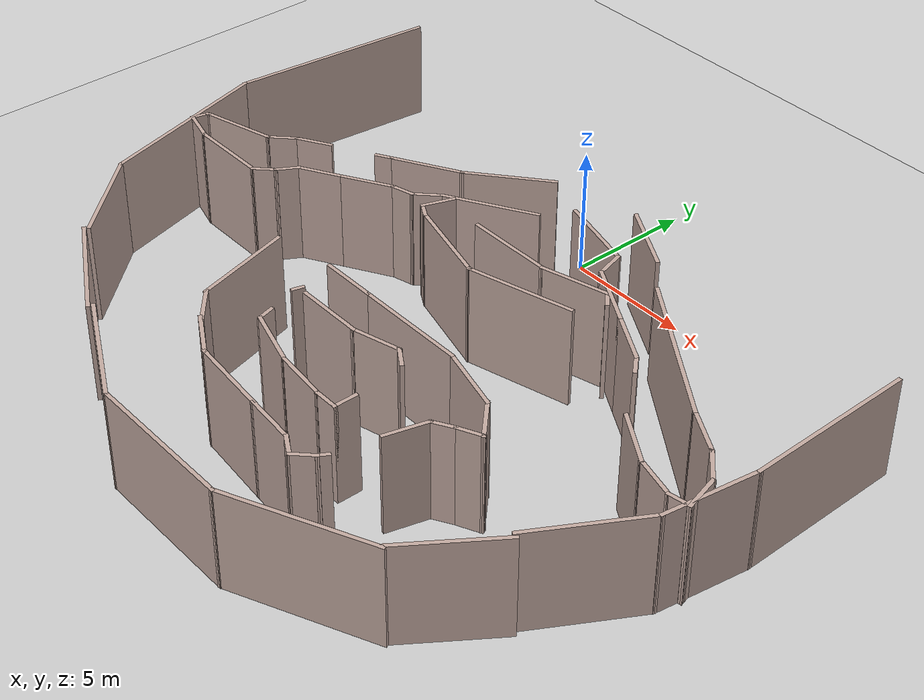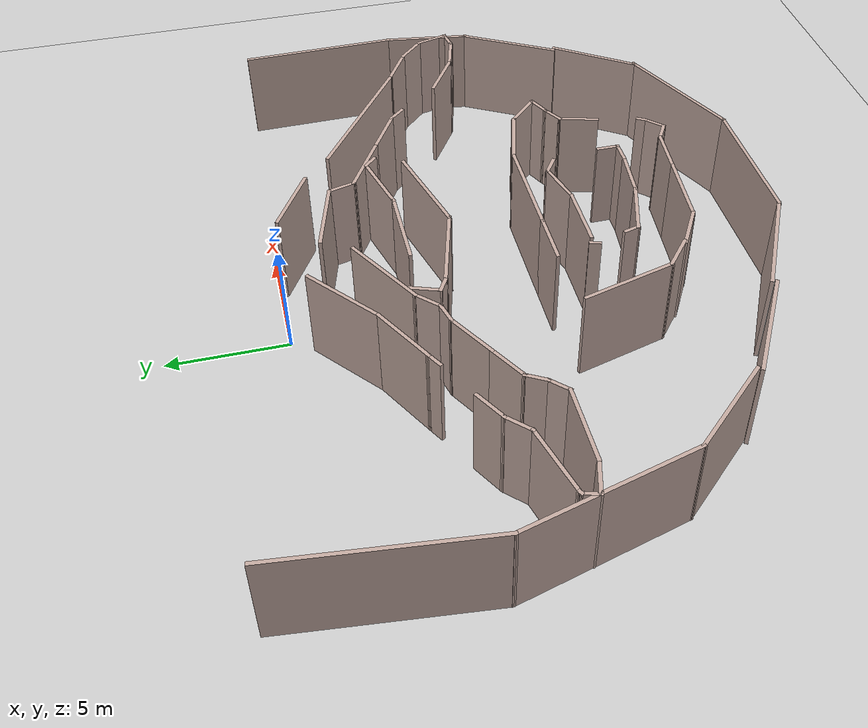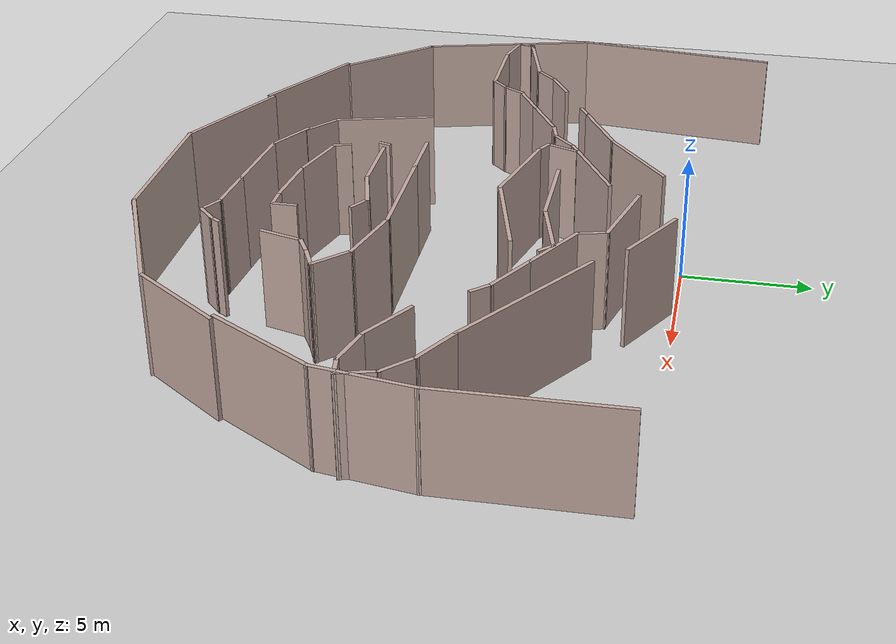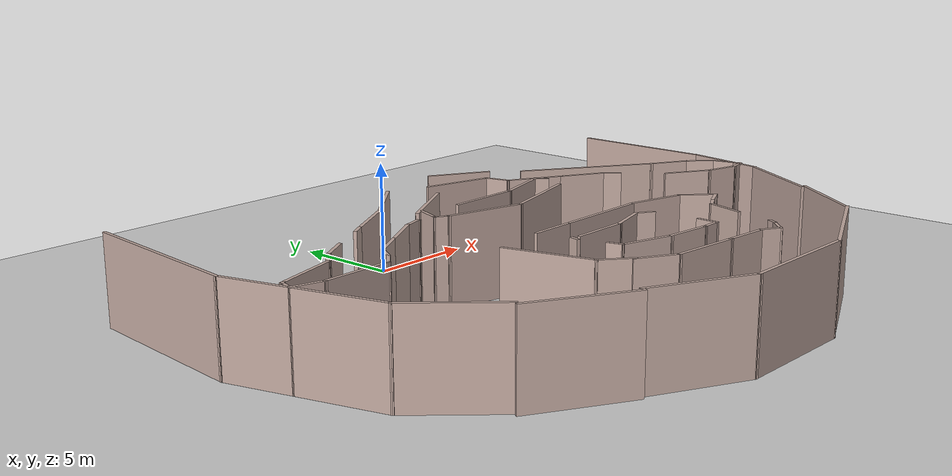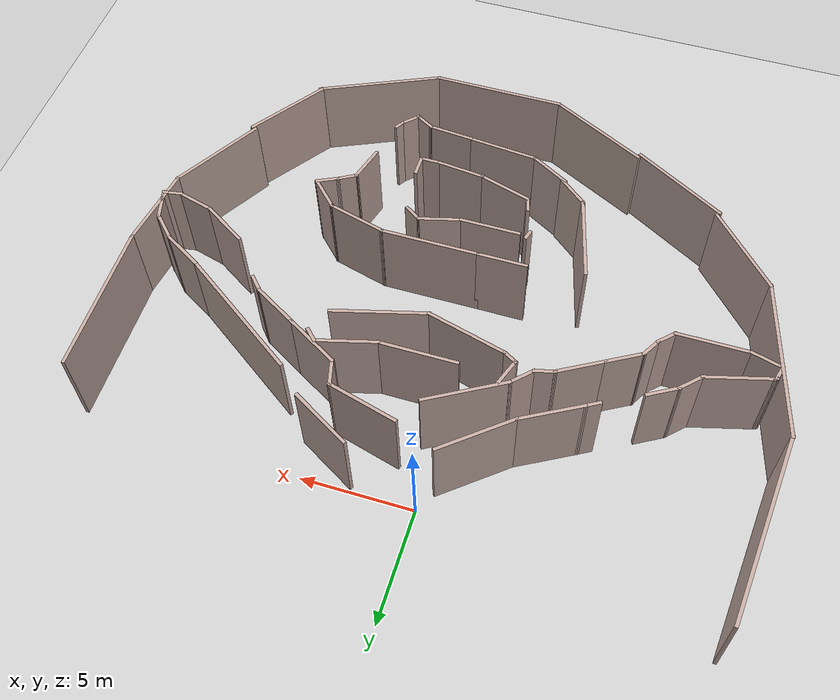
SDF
<sdf version="1.7">
 <world name="default">
  <model name="ground_plane">
   <static>1</static>
   <link name="link">
    <collision name="collision">
     <geometry><plane><normal>0 0 1</normal><size>100 100</size></plane></geometry>
     <surface><friction><ode><mu>100</mu><mu2>50</mu2></ode></friction></surface>
    </collision>
    <visual name="visual">
     <cast_shadows>0</cast_shadows>
     <geometry><plane><normal>0 0 1</normal><size>100 100</size></plane></geometry>
     <material>
      <script><uri>file://media/materials/scripts/gazebo.material</uri><name>Gazebo/Grey</name></script>
     </material>
    </visual>
   </link>
  </model>
  <model name="Untitled">
   <pose>-0.071284 -0.040454 0 0 -0 0</pose>
   <link name="Wall_100">
    <collision name="Wall_100_Collision">
     <geometry><box><size>8.26296 0.15 4.0</size></box></geometry>
     <pose>0 0 2.0 0 -0 0</pose>
    </collision>
    <visual name="Wall_100_Visual">
     <pose>0 0 2.0 0 -0 0</pose>
     <geometry><box><size>8.26296 0.15 4.0</size></box></geometry>
     <material>
      <script><uri>file://media/materials/scripts/gazebo.material</uri><name>Gazebo/Grey</name></script>
      <ambient>0.760784 0.662745 0.627451 1</ambient>
     </material>
     <meta><layer>0</layer></meta>
    </visual>
    <pose>-13.0327 -1.43511 0 0 -0 -1.67725</pose>
   </link>
   <link name="Wall_102">
    <collision name="Wall_102_Collision">
     <geometry><box><size>3.76572 0.15 4.0</size></box></geometry>
     <pose>0 0 2.0 0 -0 0</pose>
    </collision>
    <visual name="Wall_102_Visual">
     <pose>0 0 2.0 0 -0 0</pose>
     <geometry><box><size>3.76572 0.15 4.0</size></box></geometry>
     <material>
      <script><uri>file://media/materials/scripts/gazebo.material</uri><name>Gazebo/Grey</name></script>
      <ambient>0.760784 0.662745 0.627451 1</ambient>
     </material>
     <meta><layer>0</layer></meta>
    </visual>
    <pose>14.7329 -8.7065 0 0 -0 1.42378</pose>
   </link>
   <link name="Wall_103">
    <collision name="Wall_103_Collision">
     <geometry><box><size>6.73423 0.15 4.0</size></box></geometry>
     <pose>0 0 2.0 0 -0 0</pose>
    </collision>
    <visual name="Wall_103_Visual">
     <pose>0 0 2.0 0 -0 0</pose>
     <geometry><box><size>6.73423 0.15 4.0</size></box></geometry>
     <material>
      <script><uri>file://media/materials/scripts/gazebo.material</uri><name>Gazebo/Grey</name></script>
      <ambient>0.760784 0.662745 0.627451 1</ambient>
     </material>
     <meta><layer>0</layer></meta>
    </visual>
    <pose>14.933 -3.62666 0 0 -0 1.59045</pose>
   </link>
   <link name="Wall_167">
    <collision name="Wall_167_Collision">
     <geometry><box><size>3.59762 0.15 4.0</size></box></geometry>
     <pose>0 0 2.0 0 -0 0</pose>
    </collision>
    <visual name="Wall_167_Visual">
     <pose>0 0 2.0 0 -0 0</pose>
     <geometry><box><size>3.59762 0.15 4.0</size></box></geometry>
     <material>
      <script><uri>file://media/materials/scripts/gazebo.material</uri><name>Gazebo/Grey</name></script>
      <ambient>0.760784 0.662745 0.627451 1</ambient>
     </material>
     <meta><layer>0</layer></meta>
    </visual>
    <pose>-1.80589 -2.00922 0 0 -0 -2.45139</pose>
   </link>
   <link name="Wall_168">
    <collision name="Wall_168_Collision">
     <geometry><box><size>2.9108 0.15 4.0</size></box></geometry>
     <pose>0 0 2.0 0 -0 0</pose>
    </collision>
    <visual name="Wall_168_Visual">
     <pose>0 0 2.0 0 -0 0</pose>
     <geometry><box><size>2.9108 0.15 4.0</size></box></geometry>
     <material>
      <script><uri>file://media/materials/scripts/gazebo.material</uri><name>Gazebo/Grey</name></script>
      <ambient>0.760784 0.662745 0.627451 1</ambient>
     </material>
     <meta><layer>0</layer></meta>
    </visual>
    <pose>-4.33918 -3.78189 0 0 -0 -2.63056</pose>
   </link>
   <link name="Wall_170">
    <collision name="Wall_170_Collision">
     <geometry><box><size>0.75 0.15 4.0</size></box></geometry>
     <pose>0 0 2.0 0 -0 0</pose>
    </collision>
    <visual name="Wall_170_Visual">
     <pose>0 0 2.0 0 -0 0</pose>
     <geometry><box><size>0.75 0.15 4.0</size></box></geometry>
     <material>
      <script><uri>file://media/materials/scripts/gazebo.material</uri><name>Gazebo/Grey</name></script>
      <ambient>0.760784 0.662745 0.627451 1</ambient>
     </material>
     <meta><layer>0</layer></meta>
    </visual>
    <pose>-5.80303 -4.60702 0 0 -0 -2.61799</pose>
   </link>
   <link name="Wall_173">
    <collision name="Wall_173_Collision">
     <geometry><box><size>1.5 0.15 4.0</size></box></geometry>
     <pose>0 0 2.0 0 -0 0</pose>
    </collision>
    <visual name="Wall_173_Visual">
     <pose>0 0 2.0 0 -0 0</pose>
     <geometry><box><size>1.5 0.15 4.0</size></box></geometry>
     <material>
      <script><uri>file://media/materials/scripts/gazebo.material</uri><name>Gazebo/Grey</name></script>
      <ambient>0.760784 0.662745 0.627451 1</ambient>
     </material>
     <meta><layer>0</layer></meta>
    </visual>
    <pose>-8.31096 -5.98026 0 0 -0 -2.61799</pose>
   </link>
   <link name="Wall_174">
    <collision name="Wall_174_Collision">
     <geometry><box><size>1.25 0.15 4.0</size></box></geometry>
     <pose>0 0 2.0 0 -0 0</pose>
    </collision>
    <visual name="Wall_174_Visual">
     <pose>0 0 2.0 0 -0 0</pose>
     <geometry><box><size>1.25 0.15 4.0</size></box></geometry>
     <material>
      <script><uri>file://media/materials/scripts/gazebo.material</uri><name>Gazebo/Grey</name></script>
      <ambient>0.760784 0.662745 0.627451 1</ambient>
     </material>
     <meta><layer>0</layer></meta>
    </visual>
    <pose>-9.28444 -6.70667 0 0 -0 -2.35619</pose>
   </link>
   <link name="Wall_175">
    <collision name="Wall_175_Collision">
     <geometry><box><size>3 0.15 4.0</size></box></geometry>
     <pose>0 0 2.0 0 -0 0</pose>
    </collision>
    <visual name="Wall_175_Visual">
     <pose>0 0 2.0 0 -0 0</pose>
     <geometry><box><size>3 0.15 4.0</size></box></geometry>
     <material>
      <script><uri>file://media/materials/scripts/gazebo.material</uri><name>Gazebo/Grey</name></script>
      <ambient>0.760784 0.662745 0.627451 1</ambient>
     </material>
     <meta><layer>0</layer></meta>
    </visual>
    <pose>-11.0498 -7.46439 0 0 -0 -2.87979</pose>
   </link>
   <link name="Wall_176">
    <collision name="Wall_176_Collision">
     <geometry><box><size>0.25 0.15 4.0</size></box></geometry>
     <pose>0 0 2.0 0 -0 0</pose>
    </collision>
    <visual name="Wall_176_Visual">
     <pose>0 0 2.0 0 -0 0</pose>
     <geometry><box><size>0.25 0.15 4.0</size></box></geometry>
     <material>
      <script><uri>file://media/materials/scripts/gazebo.material</uri><name>Gazebo/Grey</name></script>
      <ambient>0.760784 0.662745 0.627451 1</ambient>
     </material>
     <meta><layer>0</layer></meta>
    </visual>
    <pose>-12.4695 -7.85821 0 0 -0 -2.61799</pose>
   </link>
   <link name="Wall_177">
    <collision name="Wall_177_Collision">
     <geometry><box><size>0.75 0.15 4.0</size></box></geometry>
     <pose>0 0 2.0 0 -0 0</pose>
    </collision>
    <visual name="Wall_177_Visual">
     <pose>0 0 2.0 0 -0 0</pose>
     <geometry><box><size>0.75 0.15 4.0</size></box></geometry>
     <material>
      <script><uri>file://media/materials/scripts/gazebo.material</uri><name>Gazebo/Grey</name></script>
      <ambient>0.760784 0.662745 0.627451 1</ambient>
     </material>
     <meta><layer>0</layer></meta>
    </visual>
    <pose>-12.5905 -8.17299 0 0 -0 -1.8326</pose>
   </link>
   <link name="Wall_178">
    <collision name="Wall_178_Collision">
     <geometry><box><size>1.5 0.15 4.0</size></box></geometry>
     <pose>0 0 2.0 0 -0 0</pose>
    </collision>
    <visual name="Wall_178_Visual">
     <pose>0 0 2.0 0 -0 0</pose>
     <geometry><box><size>1.5 0.15 4.0</size></box></geometry>
     <material>
      <script><uri>file://media/materials/scripts/gazebo.material</uri><name>Gazebo/Grey</name></script>
      <ambient>0.760784 0.662745 0.627451 1</ambient>
     </material>
     <meta><layer>0</layer></meta>
    </visual>
    <pose>-12.0161 -8.63747 0 0 -0 -0.261799</pose>
   </link>
   <link name="Wall_179">
    <collision name="Wall_179_Collision">
     <geometry><box><size>3.25 0.15 4.0</size></box></geometry>
     <pose>0 0 2.0 0 -0 0</pose>
    </collision>
    <visual name="Wall_179_Visual">
     <pose>0 0 2.0 0 -0 0</pose>
     <geometry><box><size>3.25 0.15 4.0</size></box></geometry>
     <material>
      <script><uri>file://media/materials/scripts/gazebo.material</uri><name>Gazebo/Grey</name></script>
      <ambient>0.760784 0.662745 0.627451 1</ambient>
     </material>
     <meta><layer>0</layer></meta>
    </visual>
    <pose>-9.81413 -8.81217 0 0 -0 0</pose>
   </link>
   <link name="Wall_180">
    <collision name="Wall_180_Collision">
     <geometry><box><size>1 0.15 4.0</size></box></geometry>
     <pose>0 0 2.0 0 -0 0</pose>
    </collision>
    <visual name="Wall_180_Visual">
     <pose>0 0 2.0 0 -0 0</pose>
     <geometry><box><size>1 0.15 4.0</size></box></geometry>
     <material>
      <script><uri>file://media/materials/scripts/gazebo.material</uri><name>Gazebo/Grey</name></script>
      <ambient>0.760784 0.662745 0.627451 1</ambient>
     </material>
     <meta><layer>0</layer></meta>
    </visual>
    <pose>-7.96361 -8.51165 0 0 -0 0.785398</pose>
   </link>
   <link name="Wall_181">
    <collision name="Wall_181_Collision">
     <geometry><box><size>1 0.15 4.0</size></box></geometry>
     <pose>0 0 2.0 0 -0 0</pose>
    </collision>
    <visual name="Wall_181_Visual">
     <pose>0 0 2.0 0 -0 0</pose>
     <geometry><box><size>1 0.15 4.0</size></box></geometry>
     <material>
      <script><uri>file://media/materials/scripts/gazebo.material</uri><name>Gazebo/Grey</name></script>
      <ambient>0.760784 0.662745 0.627451 1</ambient>
     </material>
     <meta><layer>0</layer></meta>
    </visual>
    <pose>-7.45059 -7.84307 0 0 -0 1.0472</pose>
   </link>
   <link name="Wall_182">
    <collision name="Wall_182_Collision">
     <geometry><box><size>1.75 0.15 4.0</size></box></geometry>
     <pose>0 0 2.0 0 -0 0</pose>
    </collision>
    <visual name="Wall_182_Visual">
     <pose>0 0 2.0 0 -0 0</pose>
     <geometry><box><size>1.75 0.15 4.0</size></box></geometry>
     <material>
      <script><uri>file://media/materials/scripts/gazebo.material</uri><name>Gazebo/Grey</name></script>
      <ambient>0.760784 0.662745 0.627451 1</ambient>
     </material>
     <meta><layer>0</layer></meta>
    </visual>
    <pose>-6.54527 -7.07501 0 0 -0 0.523599</pose>
   </link>
   <link name="Wall_183">
    <collision name="Wall_183_Collision">
     <geometry><box><size>2.25 0.15 4.0</size></box></geometry>
     <pose>0 0 2.0 0 -0 0</pose>
    </collision>
    <visual name="Wall_183_Visual">
     <pose>0 0 2.0 0 -0 0</pose>
     <geometry><box><size>2.25 0.15 4.0</size></box></geometry>
     <material>
      <script><uri>file://media/materials/scripts/gazebo.material</uri><name>Gazebo/Grey</name></script>
      <ambient>0.760784 0.662745 0.627451 1</ambient>
     </material>
     <meta><layer>0</layer></meta>
    </visual>
    <pose>-4.94312 -6.15001 0 0 -0 0.523599</pose>
   </link>
   <link name="Wall_184">
    <collision name="Wall_184_Collision">
     <geometry><box><size>1 0.15 4.0</size></box></geometry>
     <pose>0 0 2.0 0 -0 0</pose>
    </collision>
    <visual name="Wall_184_Visual">
     <pose>0 0 2.0 0 -0 0</pose>
     <geometry><box><size>1 0.15 4.0</size></box></geometry>
     <material>
      <script><uri>file://media/materials/scripts/gazebo.material</uri><name>Gazebo/Grey</name></script>
      <ambient>0.760784 0.662745 0.627451 1</ambient>
     </material>
     <meta><layer>0</layer></meta>
    </visual>
    <pose>-3.62328 -5.51501 0 0 -0 0.261799</pose>
   </link>
   <link name="Wall_185">
    <collision name="Wall_185_Collision">
     <geometry><box><size>1.25 0.15 4.0</size></box></geometry>
     <pose>0 0 2.0 0 -0 0</pose>
    </collision>
    <visual name="Wall_185_Visual">
     <pose>0 0 2.0 0 -0 0</pose>
     <geometry><box><size>1.25 0.15 4.0</size></box></geometry>
     <material>
      <script><uri>file://media/materials/scripts/gazebo.material</uri><name>Gazebo/Grey</name></script>
      <ambient>0.760784 0.662745 0.627451 1</ambient>
     </material>
     <meta><layer>0</layer></meta>
    </visual>
    <pose>-2.82385 -5.0161 0 0 -0 0.785398</pose>
   </link>
   <link name="Wall_186">
    <collision name="Wall_186_Collision">
     <geometry><box><size>3.75 0.15 4.0</size></box></geometry>
     <pose>0 0 2.0 0 -0 0</pose>
    </collision>
    <visual name="Wall_186_Visual">
     <pose>0 0 2.0 0 -0 0</pose>
     <geometry><box><size>3.75 0.15 4.0</size></box></geometry>
     <material>
      <script><uri>file://media/materials/scripts/gazebo.material</uri><name>Gazebo/Grey</name></script>
      <ambient>0.760784 0.662745 0.627451 1</ambient>
     </material>
     <meta><layer>0</layer></meta>
    </visual>
    <pose>-0.876094 -3.7272 0 0 -0 0.523599</pose>
   </link>
   <link name="Wall_188">
    <collision name="Wall_188_Collision">
     <geometry><box><size>3.25 0.15 4.0</size></box></geometry>
     <pose>0 0 2.0 0 -0 0</pose>
    </collision>
    <visual name="Wall_188_Visual">
     <pose>0 0 2.0 0 -0 0</pose>
     <geometry><box><size>3.25 0.15 4.0</size></box></geometry>
     <material>
      <script><uri>file://media/materials/scripts/gazebo.material</uri><name>Gazebo/Grey</name></script>
      <ambient>0.760784 0.662745 0.627451 1</ambient>
     </material>
     <meta><layer>0</layer></meta>
    </visual>
    <pose>2.85494 -2.05923 0 0 -0 -0.261799</pose>
   </link>
   <link name="Wall_189">
    <collision name="Wall_189_Collision">
     <geometry><box><size>1.25 0.15 4.0</size></box></geometry>
     <pose>0 0 2.0 0 -0 0</pose>
    </collision>
    <visual name="Wall_189_Visual">
     <pose>0 0 2.0 0 -0 0</pose>
     <geometry><box><size>1.25 0.15 4.0</size></box></geometry>
     <material>
      <script><uri>file://media/materials/scripts/gazebo.material</uri><name>Gazebo/Grey</name></script>
      <ambient>0.760784 0.662745 0.627451 1</ambient>
     </material>
     <meta><layer>0</layer></meta>
    </visual>
    <pose>4.49447 -2.99166 0 0 -0 -1.309</pose>
   </link>
   <link name="Wall_190">
    <collision name="Wall_190_Collision">
     <geometry><box><size>2.75 0.15 4.0</size></box></geometry>
     <pose>0 0 2.0 0 -0 0</pose>
    </collision>
    <visual name="Wall_190_Visual">
     <pose>0 0 2.0 0 -0 0</pose>
     <geometry><box><size>2.75 0.15 4.0</size></box></geometry>
     <material>
      <script><uri>file://media/materials/scripts/gazebo.material</uri><name>Gazebo/Grey</name></script>
      <ambient>0.760784 0.662745 0.627451 1</ambient>
     </material>
     <meta><layer>0</layer></meta>
    </visual>
    <pose>5.76265 -4.17292 0 0 -0 -0.523599</pose>
   </link>
   <link name="Wall_191">
    <collision name="Wall_191_Collision">
     <geometry><box><size>2.25 0.15 4.0</size></box></geometry>
     <pose>0 0 2.0 0 -0 0</pose>
    </collision>
    <visual name="Wall_191_Visual">
     <pose>0 0 2.0 0 -0 0</pose>
     <geometry><box><size>2.25 0.15 4.0</size></box></geometry>
     <material>
      <script><uri>file://media/materials/scripts/gazebo.material</uri><name>Gazebo/Grey</name></script>
      <ambient>0.760784 0.662745 0.627451 1</ambient>
     </material>
     <meta><layer>0</layer></meta>
    </visual>
    <pose>7.79781 -5.34792 0 0 -0 -0.523599</pose>
   </link>
   <link name="Wall_192">
    <collision name="Wall_192_Collision">
     <geometry><box><size>0.914214 0.15 4.0</size></box></geometry>
     <pose>0 0 2.0 0 -0 0</pose>
    </collision>
    <visual name="Wall_192_Visual">
     <pose>0 0 2.0 0 -0 0</pose>
     <geometry><box><size>0.914214 0.15 4.0</size></box></geometry>
     <material>
      <script><uri>file://media/materials/scripts/gazebo.material</uri><name>Gazebo/Grey</name></script>
      <ambient>0.760784 0.662745 0.627451 1</ambient>
     </material>
     <meta><layer>0</layer></meta>
    </visual>
    <pose>8.96539 -6.15454 0 0 -0 -0.828657</pose>
   </link>
   <link name="Wall_194">
    <collision name="Wall_194_Collision">
     <geometry><box><size>2.32419 0.15 4.0</size></box></geometry>
     <pose>0 0 2.0 0 -0 0</pose>
    </collision>
    <visual name="Wall_194_Visual">
     <pose>0 0 2.0 0 -0 0</pose>
     <geometry><box><size>2.32419 0.15 4.0</size></box></geometry>
     <material>
      <script><uri>file://media/materials/scripts/gazebo.material</uri><name>Gazebo/Grey</name></script>
      <ambient>0.760784 0.662745 0.627451 1</ambient>
     </material>
     <meta><layer>0</layer></meta>
    </visual>
    <pose>11.4883 -8.71762 0 0 -0 -0.558669</pose>
   </link>
   <link name="Wall_195">
    <collision name="Wall_195_Collision">
     <geometry><box><size>1.75 0.15 4.0</size></box></geometry>
     <pose>0 0 2.0 0 -0 0</pose>
    </collision>
    <visual name="Wall_195_Visual">
     <pose>0 0 2.0 0 -0 0</pose>
     <geometry><box><size>1.75 0.15 4.0</size></box></geometry>
     <material>
      <script><uri>file://media/materials/scripts/gazebo.material</uri><name>Gazebo/Grey</name></script>
      <ambient>0.760784 0.662745 0.627451 1</ambient>
     </material>
     <meta><layer>0</layer></meta>
    </visual>
    <pose>13.1828 -9.50089 0 0 -0 -0.261799</pose>
   </link>
   <link name="Wall_196">
    <collision name="Wall_196_Collision">
     <geometry><box><size>0.938094 0.15 4.0</size></box></geometry>
     <pose>0 0 2.0 0 -0 0</pose>
    </collision>
    <visual name="Wall_196_Visual">
     <pose>0 0 2.0 0 -0 0</pose>
     <geometry><box><size>0.938094 0.15 4.0</size></box></geometry>
     <material>
      <script><uri>file://media/materials/scripts/gazebo.material</uri><name>Gazebo/Grey</name></script>
      <ambient>0.760784 0.662745 0.627451 1</ambient>
     </material>
     <meta><layer>0</layer></meta>
    </visual>
    <pose>14.3445 -9.64452 0 0 -0 0.161665</pose>
   </link>
   <link name="Wall_197">
    <collision name="Wall_197_Collision">
     <geometry><box><size>1.5 0.15 4.0</size></box></geometry>
     <pose>0 0 2.0 0 -0 0</pose>
    </collision>
    <visual name="Wall_197_Visual">
     <pose>0 0 2.0 0 -0 0</pose>
     <geometry><box><size>1.5 0.15 4.0</size></box></geometry>
     <material>
      <script><uri>file://media/materials/scripts/gazebo.material</uri><name>Gazebo/Grey</name></script>
      <ambient>0.760784 0.662745 0.627451 1</ambient>
     </material>
     <meta><layer>0</layer></meta>
    </visual>
    <pose>14.5587 -8.9291 0 0 -0 1.8326</pose>
   </link>
   <link name="Wall_198">
    <collision name="Wall_198_Collision">
     <geometry><box><size>1.5 0.15 4.0</size></box></geometry>
     <pose>0 0 2.0 0 -0 0</pose>
    </collision>
    <visual name="Wall_198_Visual">
     <pose>0 0 2.0 0 -0 0</pose>
     <geometry><box><size>1.5 0.15 4.0</size></box></geometry>
     <material>
      <script><uri>file://media/materials/scripts/gazebo.material</uri><name>Gazebo/Grey</name></script>
      <ambient>0.760784 0.662745 0.627451 1</ambient>
     </material>
     <meta><layer>0</layer></meta>
    </visual>
    <pose>13.9067 -7.7998 0 0 -0 2.35619</pose>
   </link>
   <link name="Wall_199">
    <collision name="Wall_199_Collision">
     <geometry><box><size>2 0.15 4.0</size></box></geometry>
     <pose>0 0 2.0 0 -0 0</pose>
    </collision>
    <visual name="Wall_199_Visual">
     <pose>0 0 2.0 0 -0 0</pose>
     <geometry><box><size>2 0.15 4.0</size></box></geometry>
     <material>
      <script><uri>file://media/materials/scripts/gazebo.material</uri><name>Gazebo/Grey</name></script>
      <ambient>0.760784 0.662745 0.627451 1</ambient>
     </material>
     <meta><layer>0</layer></meta>
    </visual>
    <pose>12.6283 -6.86 0 0 -0 2.61799</pose>
   </link>
   <link name="Wall_200">
    <collision name="Wall_200_Collision">
     <geometry><box><size>6.577 0.15 4.0</size></box></geometry>
     <pose>0 0 2.0 0 -0 0</pose>
    </collision>
    <visual name="Wall_200_Visual">
     <pose>0 0 2.0 0 -0 0</pose>
     <geometry><box><size>6.577 0.15 4.0</size></box></geometry>
     <material>
      <script><uri>file://media/materials/scripts/gazebo.material</uri><name>Gazebo/Grey</name></script>
      <ambient>0.760784 0.662745 0.627451 1</ambient>
     </material>
     <meta><layer>0</layer></meta>
    </visual>
    <pose>9.18078 -4.57461 0 0 -0 2.53842</pose>
   </link>
   <link name="Wall_202">
    <collision name="Wall_202_Collision">
     <geometry><box><size>3 0.15 4.0</size></box></geometry>
     <pose>0 0 2.0 0 -0 0</pose>
    </collision>
    <visual name="Wall_202_Visual">
     <pose>0 0 2.0 0 -0 0</pose>
     <geometry><box><size>3 0.15 4.0</size></box></geometry>
     <material>
      <script><uri>file://media/materials/scripts/gazebo.material</uri><name>Gazebo/Grey</name></script>
      <ambient>0.760784 0.662745 0.627451 1</ambient>
     </material>
     <meta><layer>0</layer></meta>
    </visual>
    <pose>4.16888 -0.907857 0 0 -0 2.61799</pose>
   </link>
   <link name="Wall_209">
    <collision name="Wall_209_Collision">
     <geometry><box><size>3.5 0.15 4.0</size></box></geometry>
     <pose>0 0 2.0 0 -0 0</pose>
    </collision>
    <visual name="Wall_209_Visual">
     <pose>0 0 2.0 0 -0 0</pose>
     <geometry><box><size>3.5 0.15 4.0</size></box></geometry>
     <material>
      <script><uri>file://media/materials/scripts/gazebo.material</uri><name>Gazebo/Grey</name></script>
      <ambient>0.760784 0.662745 0.627451 1</ambient>
     </material>
     <meta><layer>0</layer></meta>
    </visual>
    <pose>1.47091 -4.88301 0 0 -0 0</pose>
   </link>
   <link name="Wall_210">
    <collision name="Wall_210_Collision">
     <geometry><box><size>2.75 0.15 4.0</size></box></geometry>
     <pose>0 0 2.0 0 -0 0</pose>
    </collision>
    <visual name="Wall_210_Visual">
     <pose>0 0 2.0 0 -0 0</pose>
     <geometry><box><size>2.75 0.15 4.0</size></box></geometry>
     <material>
      <script><uri>file://media/materials/scripts/gazebo.material</uri><name>Gazebo/Grey</name></script>
      <ambient>0.760784 0.662745 0.627451 1</ambient>
     </material>
     <meta><layer>0</layer></meta>
    </visual>
    <pose>4.40161 -4.54654 0 0 -0 0.261799</pose>
   </link>
   <link name="Wall_211">
    <collision name="Wall_211_Collision">
     <geometry><box><size>0.75 0.15 4.0</size></box></geometry>
     <pose>0 0 2.0 0 -0 0</pose>
    </collision>
    <visual name="Wall_211_Visual">
     <pose>0 0 2.0 0 -0 0</pose>
     <geometry><box><size>0.75 0.15 4.0</size></box></geometry>
     <material>
      <script><uri>file://media/materials/scripts/gazebo.material</uri><name>Gazebo/Grey</name></script>
      <ambient>0.760784 0.662745 0.627451 1</ambient>
     </material>
     <meta><layer>0</layer></meta>
    </visual>
    <pose>5.86944 -4.42221 0 0 -0 -0.785398</pose>
   </link>
   <link name="Wall_213">
    <collision name="Wall_213_Collision">
     <geometry><box><size>4.25 0.15 4.0</size></box></geometry>
     <pose>0 0 2.0 0 -0 0</pose>
    </collision>
    <visual name="Wall_213_Visual">
     <pose>0 0 2.0 0 -0 0</pose>
     <geometry><box><size>4.25 0.15 4.0</size></box></geometry>
     <material>
      <script><uri>file://media/materials/scripts/gazebo.material</uri><name>Gazebo/Grey</name></script>
      <ambient>0.760784 0.662745 0.627451 1</ambient>
     </material>
     <meta><layer>0</layer></meta>
    </visual>
    <pose>3.57525 -6.29214 0 0 -0 -2.87979</pose>
   </link>
   <link name="Wall_214">
    <collision name="Wall_214_Collision">
     <geometry><box><size>3.75 0.15 4.0</size></box></geometry>
     <pose>0 0 2.0 0 -0 0</pose>
    </collision>
    <visual name="Wall_214_Visual">
     <pose>0 0 2.0 0 -0 0</pose>
     <geometry><box><size>3.75 0.15 4.0</size></box></geometry>
     <material>
      <script><uri>file://media/materials/scripts/gazebo.material</uri><name>Gazebo/Grey</name></script>
      <ambient>0.760784 0.662745 0.627451 1</ambient>
     </material>
     <meta><layer>0</layer></meta>
    </visual>
    <pose>-0.143568 -6.35685 0 0 -0 2.87979</pose>
   </link>
   <link name="Wall_215">
    <collision name="Wall_215_Collision">
     <geometry><box><size>0.75 0.15 4.0</size></box></geometry>
     <pose>0 0 2.0 0 -0 0</pose>
    </collision>
    <visual name="Wall_215_Visual">
     <pose>0 0 2.0 0 -0 0</pose>
     <geometry><box><size>0.75 0.15 4.0</size></box></geometry>
     <material>
      <script><uri>file://media/materials/scripts/gazebo.material</uri><name>Gazebo/Grey</name></script>
      <ambient>0.760784 0.662745 0.627451 1</ambient>
     </material>
     <meta><layer>0</layer></meta>
    </visual>
    <pose>-2.14204 -5.74097 0 0 -0 2.61799</pose>
   </link>
   <link name="Wall_216">
    <collision name="Wall_216_Collision">
     <geometry><box><size>1.34201 0.15 4.0</size></box></geometry>
     <pose>0 0 2.0 0 -0 0</pose>
    </collision>
    <visual name="Wall_216_Visual">
     <pose>0 0 2.0 0 -0 0</pose>
     <geometry><box><size>1.34201 0.15 4.0</size></box></geometry>
     <material>
      <script><uri>file://media/materials/scripts/gazebo.material</uri><name>Gazebo/Grey</name></script>
      <ambient>0.760784 0.662745 0.627451 1</ambient>
     </material>
     <meta><layer>0</layer></meta>
    </visual>
    <pose>-2.20071 -5.02994 0 0 -0 1.22656</pose>
   </link>
   <link name="Wall_219">
    <collision name="Wall_219_Collision">
     <geometry><box><size>2.25 0.15 4.0</size></box></geometry>
     <pose>0 0 2.0 0 -0 0</pose>
    </collision>
    <visual name="Wall_219_Visual">
     <pose>0 0 2.0 0 -0 0</pose>
     <geometry><box><size>2.25 0.15 4.0</size></box></geometry>
     <material>
      <script><uri>file://media/materials/scripts/gazebo.material</uri><name>Gazebo/Grey</name></script>
      <ambient>0.760784 0.662745 0.627451 1</ambient>
     </material>
     <meta><layer>0</layer></meta>
    </visual>
    <pose>-0.542989 -10.3472 0 0 -0 0</pose>
   </link>
   <link name="Wall_220">
    <collision name="Wall_220_Collision">
     <geometry><box><size>4.5 0.15 4.0</size></box></geometry>
     <pose>0 0 2.0 0 -0 0</pose>
    </collision>
    <visual name="Wall_220_Visual">
     <pose>0 0 2.0 0 -0 0</pose>
     <geometry><box><size>4.5 0.15 4.0</size></box></geometry>
     <material>
      <script><uri>file://media/materials/scripts/gazebo.material</uri><name>Gazebo/Grey</name></script>
      <ambient>0.760784 0.662745 0.627451 1</ambient>
     </material>
     <meta><layer>0</layer></meta>
    </visual>
    <pose>2.68201 -10.3472 0 0 -0 0</pose>
   </link>
   <link name="Wall_221">
    <collision name="Wall_221_Collision">
     <geometry><box><size>2.75 0.15 4.0</size></box></geometry>
     <pose>0 0 2.0 0 -0 0</pose>
    </collision>
    <visual name="Wall_221_Visual">
     <pose>0 0 2.0 0 -0 0</pose>
     <geometry><box><size>2.75 0.15 4.0</size></box></geometry>
     <material>
      <script><uri>file://media/materials/scripts/gazebo.material</uri><name>Gazebo/Grey</name></script>
      <ambient>0.760784 0.662745 0.627451 1</ambient>
     </material>
     <meta><layer>0</layer></meta>
    </visual>
    <pose>6.11271 -10.6836 0 0 -0 -0.261799</pose>
   </link>
   <link name="Wall_222">
    <collision name="Wall_222_Collision">
     <geometry><box><size>1.75 0.15 4.0</size></box></geometry>
     <pose>0 0 2.0 0 -0 0</pose>
    </collision>
    <visual name="Wall_222_Visual">
     <pose>0 0 2.0 0 -0 0</pose>
     <geometry><box><size>1.75 0.15 4.0</size></box></geometry>
     <material>
      <script><uri>file://media/materials/scripts/gazebo.material</uri><name>Gazebo/Grey</name></script>
      <ambient>0.760784 0.662745 0.627451 1</ambient>
     </material>
     <meta><layer>0</layer></meta>
    </visual>
    <pose>7.9341 -11.5858 0 0 -0 -0.785398</pose>
   </link>
   <link name="Wall_223">
    <collision name="Wall_223_Collision">
     <geometry><box><size>1.07314 0.15 4.0</size></box></geometry>
     <pose>0 0 2.0 0 -0 0</pose>
    </collision>
    <visual name="Wall_223_Visual">
     <pose>0 0 2.0 0 -0 0</pose>
     <geometry><box><size>1.07314 0.15 4.0</size></box></geometry>
     <material>
      <script><uri>file://media/materials/scripts/gazebo.material</uri><name>Gazebo/Grey</name></script>
      <ambient>0.760784 0.662745 0.627451 1</ambient>
     </material>
     <meta><layer>0</layer></meta>
    </visual>
    <pose>8.08285 -12.3495 0 0 -0 -2.6982</pose>
   </link>
   <link name="Wall_224">
    <collision name="Wall_224_Collision">
     <geometry><box><size>1 0.15 4.0</size></box></geometry>
     <pose>0 0 2.0 0 -0 0</pose>
    </collision>
    <visual name="Wall_224_Visual">
     <pose>0 0 2.0 0 -0 0</pose>
     <geometry><box><size>1 0.15 4.0</size></box></geometry>
     <material>
      <script><uri>file://media/materials/scripts/gazebo.material</uri><name>Gazebo/Grey</name></script>
      <ambient>0.760784 0.662745 0.627451 1</ambient>
     </material>
     <meta><layer>0</layer></meta>
    </visual>
    <pose>7.29785 -12.76 0 0 -0 -2.61799</pose>
   </link>
   <link name="Wall_225">
    <collision name="Wall_225_Collision">
     <geometry><box><size>1.75 0.15 4.0</size></box></geometry>
     <pose>0 0 2.0 0 -0 0</pose>
    </collision>
    <visual name="Wall_225_Visual">
     <pose>0 0 2.0 0 -0 0</pose>
     <geometry><box><size>1.75 0.15 4.0</size></box></geometry>
     <material>
      <script><uri>file://media/materials/scripts/gazebo.material</uri><name>Gazebo/Grey</name></script>
      <ambient>0.760784 0.662745 0.627451 1</ambient>
     </material>
     <meta><layer>0</layer></meta>
    </visual>
    <pose>6.72274 -13.7453 0 0 -0 -1.8326</pose>
   </link>
   <link name="Wall_227">
    <collision name="Wall_227_Collision">
     <geometry><box><size>0.5 0.15 4.0</size></box></geometry>
     <pose>0 0 2.0 0 -0 0</pose>
    </collision>
    <visual name="Wall_227_Visual">
     <pose>0 0 2.0 0 -0 0</pose>
     <geometry><box><size>0.5 0.15 4.0</size></box></geometry>
     <material>
      <script><uri>file://media/materials/scripts/gazebo.material</uri><name>Gazebo/Grey</name></script>
      <ambient>0.760784 0.662745 0.627451 1</ambient>
     </material>
     <meta><layer>0</layer></meta>
    </visual>
    <pose>6.05018 -16.4299 0 0 -0 -2.0944</pose>
   </link>
   <link name="Wall_228">
    <collision name="Wall_228_Collision">
     <geometry><box><size>1 0.15 4.0</size></box></geometry>
     <pose>0 0 2.0 0 -0 0</pose>
    </collision>
    <visual name="Wall_228_Visual">
     <pose>0 0 2.0 0 -0 0</pose>
     <geometry><box><size>1 0.15 4.0</size></box></geometry>
     <material>
      <script><uri>file://media/materials/scripts/gazebo.material</uri><name>Gazebo/Grey</name></script>
      <ambient>0.760784 0.662745 0.627451 1</ambient>
     </material>
     <meta><layer>0</layer></meta>
    </visual>
    <pose>5.66216 -16.8819 0 0 -0 -2.35619</pose>
   </link>
   <link name="Wall_229">
    <collision name="Wall_229_Collision">
     <geometry><box><size>1 0.15 4.0</size></box></geometry>
     <pose>0 0 2.0 0 -0 0</pose>
    </collision>
    <visual name="Wall_229_Visual">
     <pose>0 0 2.0 0 -0 0</pose>
     <geometry><box><size>1 0.15 4.0</size></box></geometry>
     <material>
      <script><uri>file://media/materials/scripts/gazebo.material</uri><name>Gazebo/Grey</name></script>
      <ambient>0.760784 0.662745 0.627451 1</ambient>
     </material>
     <meta><layer>0</layer></meta>
    </visual>
    <pose>4.99358 -16.97 0 0 -0 2.61799</pose>
   </link>
   <link name="Wall_230">
    <collision name="Wall_230_Collision">
     <geometry><box><size>2.12279 0.15 4.0</size></box></geometry>
     <pose>0 0 2.0 0 -0 0</pose>
    </collision>
    <visual name="Wall_230_Visual">
     <pose>0 0 2.0 0 -0 0</pose>
     <geometry><box><size>2.12279 0.15 4.0</size></box></geometry>
     <material>
      <script><uri>file://media/materials/scripts/gazebo.material</uri><name>Gazebo/Grey</name></script>
      <ambient>0.760784 0.662745 0.627451 1</ambient>
     </material>
     <meta><layer>0</layer></meta>
    </visual>
    <pose>3.64306 -16.6694 0 0 -0 3.05224</pose>
   </link>
   <link name="Wall_231">
    <collision name="Wall_231_Collision">
     <geometry><box><size>3.25782 0.15 4.0</size></box></geometry>
     <pose>0 0 2.0 0 -0 0</pose>
    </collision>
    <visual name="Wall_231_Visual">
     <pose>0 0 2.0 0 -0 0</pose>
     <geometry><box><size>3.25782 0.15 4.0</size></box></geometry>
     <material>
      <script><uri>file://media/materials/scripts/gazebo.material</uri><name>Gazebo/Grey</name></script>
      <ambient>0.760784 0.662745 0.627451 1</ambient>
     </material>
     <meta><layer>0</layer></meta>
    </visual>
    <pose>1.11353 -16.4357 0 0 -0 3.04767</pose>
   </link>
   <link name="Wall_232">
    <collision name="Wall_232_Collision">
     <geometry><box><size>2 0.15 4.0</size></box></geometry>
     <pose>0 0 2.0 0 -0 0</pose>
    </collision>
    <visual name="Wall_232_Visual">
     <pose>0 0 2.0 0 -0 0</pose>
     <geometry><box><size>2 0.15 4.0</size></box></geometry>
     <material>
      <script><uri>file://media/materials/scripts/gazebo.material</uri><name>Gazebo/Grey</name></script>
      <ambient>0.760784 0.662745 0.627451 1</ambient>
     </material>
     <meta><layer>0</layer></meta>
    </visual>
    <pose>-1.2346 -15.8275 0 0 -0 2.61799</pose>
   </link>
   <link name="Wall_233">
    <collision name="Wall_233_Collision">
     <geometry><box><size>1.63823 0.15 4.0</size></box></geometry>
     <pose>0 0 2.0 0 -0 0</pose>
    </collision>
    <visual name="Wall_233_Visual">
     <pose>0 0 2.0 0 -0 0</pose>
     <geometry><box><size>1.63823 0.15 4.0</size></box></geometry>
     <material>
      <script><uri>file://media/materials/scripts/gazebo.material</uri><name>Gazebo/Grey</name></script>
      <ambient>0.760784 0.662745 0.627451 1</ambient>
     </material>
     <meta><layer>0</layer></meta>
    </visual>
    <pose>-2.51297 -14.8877 0 0 -0 2.44523</pose>
   </link>
   <link name="Wall_234">
    <collision name="Wall_234_Collision">
     <geometry><box><size>4 0.15 4.0</size></box></geometry>
     <pose>0 0 2.0 0 -0 0</pose>
    </collision>
    <visual name="Wall_234_Visual">
     <pose>0 0 2.0 0 -0 0</pose>
     <geometry><box><size>4 0.15 4.0</size></box></geometry>
     <material>
      <script><uri>file://media/materials/scripts/gazebo.material</uri><name>Gazebo/Grey</name></script>
      <ambient>0.760784 0.662745 0.627451 1</ambient>
     </material>
     <meta><layer>0</layer></meta>
    </visual>
    <pose>-3.58207 -12.551 0 0 -0 1.8326</pose>
   </link>
   <link name="Wall_240">
    <collision name="Wall_240_Collision">
     <geometry><box><size>2.50941 0.15 4.0</size></box></geometry>
     <pose>0 0 2.0 0 -0 0</pose>
    </collision>
    <visual name="Wall_240_Visual">
     <pose>0 0 2.0 0 -0 0</pose>
     <geometry><box><size>2.50941 0.15 4.0</size></box></geometry>
     <material>
      <script><uri>file://media/materials/scripts/gazebo.material</uri><name>Gazebo/Grey</name></script>
      <ambient>0.760784 0.662745 0.627451 1</ambient>
     </material>
     <meta><layer>0</layer></meta>
    </visual>
    <pose>0.401981 -14.2242 0 0 -0 -0.289227</pose>
   </link>
   <link name="Wall_241">
    <collision name="Wall_241_Collision">
     <geometry><box><size>2.23269 0.15 4.0</size></box></geometry>
     <pose>0 0 2.0 0 -0 0</pose>
    </collision>
    <visual name="Wall_241_Visual">
     <pose>0 0 2.0 0 -0 0</pose>
     <geometry><box><size>2.23269 0.15 4.0</size></box></geometry>
     <material>
      <script><uri>file://media/materials/scripts/gazebo.material</uri><name>Gazebo/Grey</name></script>
      <ambient>0.760784 0.662745 0.627451 1</ambient>
     </material>
     <meta><layer>0</layer></meta>
    </visual>
    <pose>2.5682 -14.6707 0 0 -0 -0.105828</pose>
   </link>
   <link name="Wall_242">
    <collision name="Wall_242_Collision">
     <geometry><box><size>1 0.15 4.0</size></box></geometry>
     <pose>0 0 2.0 0 -0 0</pose>
    </collision>
    <visual name="Wall_242_Visual">
     <pose>0 0 2.0 0 -0 0</pose>
     <geometry><box><size>1 0.15 4.0</size></box></geometry>
     <material>
      <script><uri>file://media/materials/scripts/gazebo.material</uri><name>Gazebo/Grey</name></script>
      <ambient>0.760784 0.662745 0.627451 1</ambient>
     </material>
     <meta><layer>0</layer></meta>
    </visual>
    <pose>4.02872 -14.7807 0 0 -0 0</pose>
   </link>
   <link name="Wall_243">
    <collision name="Wall_243_Collision">
     <geometry><box><size>1 0.15 4.0</size></box></geometry>
     <pose>0 0 2.0 0 -0 0</pose>
    </collision>
    <visual name="Wall_243_Visual">
     <pose>0 0 2.0 0 -0 0</pose>
     <geometry><box><size>1 0.15 4.0</size></box></geometry>
     <material>
      <script><uri>file://media/materials/scripts/gazebo.material</uri><name>Gazebo/Grey</name></script>
      <ambient>0.760784 0.662745 0.627451 1</ambient>
     </material>
     <meta><layer>0</layer></meta>
    </visual>
    <pose>4.45372 -14.3557 0 0 -0 1.5708</pose>
   </link>
   <link name="Wall_245">
    <collision name="Wall_245_Collision">
     <geometry><box><size>0.928405 0.15 4.0</size></box></geometry>
     <pose>0 0 2.0 0 -0 0</pose>
    </collision>
    <visual name="Wall_245_Visual">
     <pose>0 0 2.0 0 -0 0</pose>
     <geometry><box><size>0.928405 0.15 4.0</size></box></geometry>
     <material>
      <script><uri>file://media/materials/scripts/gazebo.material</uri><name>Gazebo/Grey</name></script>
      <ambient>0.760784 0.662745 0.627451 1</ambient>
     </material>
     <meta><layer>0</layer></meta>
    </visual>
    <pose>3.8578 -11.6566 0 0 -0 2.55816</pose>
   </link>
   <link name="Wall_246">
    <collision name="Wall_246_Collision">
     <geometry><box><size>2 0.15 4.0</size></box></geometry>
     <pose>0 0 2.0 0 -0 0</pose>
    </collision>
    <visual name="Wall_246_Visual">
     <pose>0 0 2.0 0 -0 0</pose>
     <geometry><box><size>2 0.15 4.0</size></box></geometry>
     <material>
      <script><uri>file://media/materials/scripts/gazebo.material</uri><name>Gazebo/Grey</name></script>
      <ambient>0.760784 0.662745 0.627451 1</ambient>
     </material>
     <meta><layer>0</layer></meta>
    </visual>
    <pose>2.6395 -11.6816 0 0 -0 -2.87979</pose>
   </link>
   <link name="Wall_247">
    <collision name="Wall_247_Collision">
     <geometry><box><size>2.75 0.15 4.0</size></box></geometry>
     <pose>0 0 2.0 0 -0 0</pose>
    </collision>
    <visual name="Wall_247_Visual">
     <pose>0 0 2.0 0 -0 0</pose>
     <geometry><box><size>2.75 0.15 4.0</size></box></geometry>
     <material>
      <script><uri>file://media/materials/scripts/gazebo.material</uri><name>Gazebo/Grey</name></script>
      <ambient>0.760784 0.662745 0.627451 1</ambient>
     </material>
     <meta><layer>0</layer></meta>
    </visual>
    <pose>0.44602 -11.921 0 0 -0 3.14159</pose>
   </link>
   <link name="Wall_250">
    <collision name="Wall_250_Collision">
     <geometry><box><size>0.5 0.15 4.0</size></box></geometry>
     <pose>0 0 2.0 0 -0 0</pose>
    </collision>
    <visual name="Wall_250_Visual">
     <pose>0 0 2.0 0 -0 0</pose>
     <geometry><box><size>0.5 0.15 4.0</size></box></geometry>
     <material>
      <script><uri>file://media/materials/scripts/gazebo.material</uri><name>Gazebo/Grey</name></script>
      <ambient>0.760784 0.662745 0.627451 1</ambient>
     </material>
     <meta><layer>0</layer></meta>
    </visual>
    <pose>-1.24178 -11.9613 0 0 -0 -1.8326</pose>
   </link>
   <link name="Wall_256">
    <collision name="Wall_256_Collision">
     <geometry><box><size>0.75 0.15 4.0</size></box></geometry>
     <pose>0 0 2.0 0 -0 0</pose>
    </collision>
    <visual name="Wall_256_Visual">
     <pose>0 0 2.0 0 -0 0</pose>
     <geometry><box><size>0.75 0.15 4.0</size></box></geometry>
     <material>
      <script><uri>file://media/materials/scripts/gazebo.material</uri><name>Gazebo/Grey</name></script>
      <ambient>0.760784 0.662745 0.627451 1</ambient>
     </material>
     <meta><layer>0</layer></meta>
    </visual>
    <pose>-0.806368 -13.598 0 0 -0 1.8326</pose>
   </link>
   <link name="Wall_91">
    <collision name="Wall_91_Collision">
     <geometry><box><size>7.25 0.15 4.0</size></box></geometry>
     <pose>0 0 2.0 0 -0 0</pose>
    </collision>
    <visual name="Wall_91_Visual">
     <pose>0 0 2.0 0 -0 0</pose>
     <geometry><box><size>7.25 0.15 4.0</size></box></geometry>
     <material>
      <script><uri>file://media/materials/scripts/gazebo.material</uri><name>Gazebo/Grey</name></script>
      <ambient>0.760784 0.662745 0.627451 1</ambient>
     </material>
     <meta><layer>0</layer></meta>
    </visual>
    <pose>-12.5449 -8.89766 0 0 -0 -1.309</pose>
   </link>
   <link name="Wall_92">
    <collision name="Wall_92_Collision">
     <geometry><box><size>4.311 0.15 4.0</size></box></geometry>
     <pose>0 0 2.0 0 -0 0</pose>
    </collision>
    <visual name="Wall_92_Visual">
     <pose>0 0 2.0 0 -0 0</pose>
     <geometry><box><size>4.311 0.15 4.0</size></box></geometry>
     <material>
      <script><uri>file://media/materials/scripts/gazebo.material</uri><name>Gazebo/Grey</name></script>
      <ambient>0.760784 0.662745 0.627451 1</ambient>
     </material>
     <meta><layer>0</layer></meta>
    </visual>
    <pose>-10.232 -13.871 0 0 -0 -0.836472</pose>
   </link>
   <link name="Wall_93">
    <collision name="Wall_93_Collision">
     <geometry><box><size>4.75 0.15 4.0</size></box></geometry>
     <pose>0 0 2.0 0 -0 0</pose>
    </collision>
    <visual name="Wall_93_Visual">
     <pose>0 0 2.0 0 -0 0</pose>
     <geometry><box><size>4.75 0.15 4.0</size></box></geometry>
     <material>
      <script><uri>file://media/materials/scripts/gazebo.material</uri><name>Gazebo/Grey</name></script>
      <ambient>0.760784 0.662745 0.627451 1</ambient>
     </material>
     <meta><layer>0</layer></meta>
    </visual>
    <pose>-6.92739 -16.7281 0 0 -0 -0.523599</pose>
   </link>
   <link name="Wall_94">
    <collision name="Wall_94_Collision">
     <geometry><box><size>4.86537 0.15 4.0</size></box></geometry>
     <pose>0 0 2.0 0 -0 0</pose>
    </collision>
    <visual name="Wall_94_Visual">
     <pose>0 0 2.0 0 -0 0</pose>
     <geometry><box><size>4.86537 0.15 4.0</size></box></geometry>
     <material>
      <script><uri>file://media/materials/scripts/gazebo.material</uri><name>Gazebo/Grey</name></script>
      <ambient>0.760784 0.662745 0.627451 1</ambient>
     </material>
     <meta><layer>0</layer></meta>
    </visual>
    <pose>-2.75591 -18.7905 0 0 -0 -0.473529</pose>
   </link>
   <link name="Wall_95">
    <collision name="Wall_95_Collision">
     <geometry><box><size>6 0.15 4.0</size></box></geometry>
     <pose>0 0 2.0 0 -0 0</pose>
    </collision>
    <visual name="Wall_95_Visual">
     <pose>0 0 2.0 0 -0 0</pose>
     <geometry><box><size>6 0.15 4.0</size></box></geometry>
     <material>
      <script><uri>file://media/materials/scripts/gazebo.material</uri><name>Gazebo/Grey</name></script>
      <ambient>0.760784 0.662745 0.627451 1</ambient>
     </material>
     <meta><layer>0</layer></meta>
    </visual>
    <pose>2.26735 -19.8657 0 0 -0 0</pose>
   </link>
   <link name="Wall_96">
    <collision name="Wall_96_Collision">
     <geometry><box><size>5.79637 0.15 4.0</size></box></geometry>
     <pose>0 0 2.0 0 -0 0</pose>
    </collision>
    <visual name="Wall_96_Visual">
     <pose>0 0 2.0 0 -0 0</pose>
     <geometry><box><size>5.79637 0.15 4.0</size></box></geometry>
     <material>
      <script><uri>file://media/materials/scripts/gazebo.material</uri><name>Gazebo/Grey</name></script>
      <ambient>0.760784 0.662745 0.627451 1</ambient>
     </material>
     <meta><layer>0</layer></meta>
    </visual>
    <pose>7.76175 -18.6958 0 0 -0 0.427259</pose>
   </link>
   <link name="Wall_97">
    <collision name="Wall_97_Collision">
     <geometry><box><size>4.02235 0.15 4.0</size></box></geometry>
     <pose>0 0 2.0 0 -0 0</pose>
    </collision>
    <visual name="Wall_97_Visual">
     <pose>0 0 2.0 0 -0 0</pose>
     <geometry><box><size>4.02235 0.15 4.0</size></box></geometry>
     <material>
      <script><uri>file://media/materials/scripts/gazebo.material</uri><name>Gazebo/Grey</name></script>
      <ambient>0.760784 0.662745 0.627451 1</ambient>
     </material>
     <meta><layer>0</layer></meta>
    </visual>
    <pose>11.3528 -15.9347 0 0 -0 0.96466</pose>
   </link>
   <link name="Wall_98">
    <collision name="Wall_98_Collision">
     <geometry><box><size>4.5 0.15 4.0</size></box></geometry>
     <pose>0 0 2.0 0 -0 0</pose>
    </collision>
    <visual name="Wall_98_Visual">
     <pose>0 0 2.0 0 -0 0</pose>
     <geometry><box><size>4.5 0.15 4.0</size></box></geometry>
     <material>
      <script><uri>file://media/materials/scripts/gazebo.material</uri><name>Gazebo/Grey</name></script>
      <ambient>0.760784 0.662745 0.627451 1</ambient>
     </material>
     <meta><layer>0</layer></meta>
    </visual>
    <pose>13.3806 -12.3785 0 0 -0 1.0472</pose>
   </link>
   <static>1</static>
  </model>
 </world>
</sdf>
